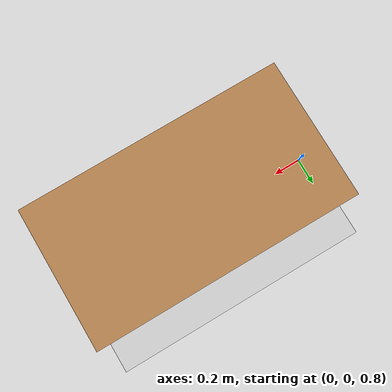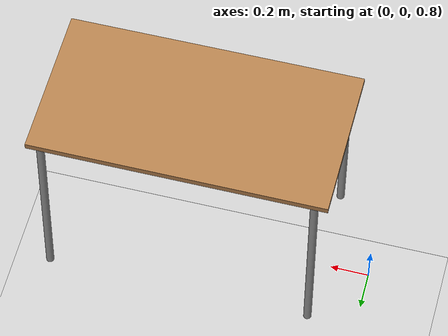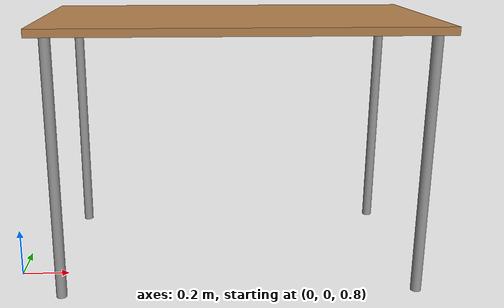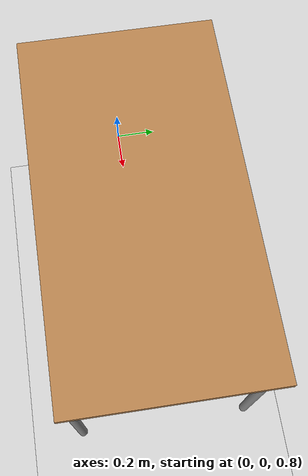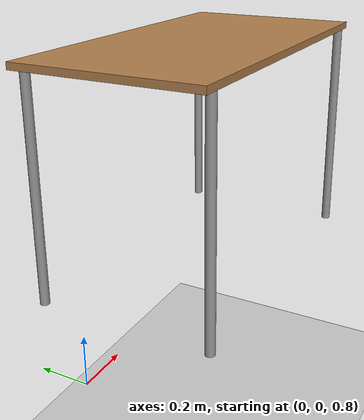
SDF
<?xml version="1.0" ?>
<sdf version="1.6">
  <world name="default">
    <include>
      <uri>model://sun</uri>
    </include>

    <include>
      <uri>model://ground_plane</uri>
    </include>

    <physics name="ode" type="ode">
      <ode>
        <constraints>
          <contact_max_correcting_vel>0</contact_max_correcting_vel>
        </constraints>
      </ode>
      <max_step_size>0.001</max_step_size>
      <real_time_update_rate>1000</real_time_update_rate>
    </physics>

    <plugin name="stepping_plugin" filename="libstepping_plugin.so"/>

    <model name="moveit_plugin_model">
      <plugin name="gazebo_ros_moveit_planning_scene" filename="libgazebo_ros_moveit_planning_scene.so">
        <robotName>victor</robotName>
        <!--  This must be the same as the root frame of the robot you're using -->
        <frameId>victor_root</frameId>
      </plugin>
    </model>

    <include>
      <name>table</name>
      <pose>0.92 0 0.90 0 0 0</pose>
      <uri>model://table</uri>
    </include>

  </world>
</sdf>

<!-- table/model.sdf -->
<sdf version="1.5">
  <model name="table">
    <static>true</static>
    <link name="link">
      <collision name="surface">
        <pose>0 0 1.0 0 0 0</pose>
        <geometry>
          <box>
            <size>1.5 0.8 0.03</size>
          </box>
        </geometry>
        <surface>
          <friction>
            <ode>
              <mu>0.6</mu>
              <mu2>0.6</mu2>
            </ode>
          </friction>
        </surface>
      </collision>
      <visual name="visual1">
        <pose>0 0 1.0 0 0 0</pose>
        <geometry>
          <box>
            <size>1.5 0.8 0.03</size>
          </box>
        </geometry>
        <material>
          <script>
            <uri>model://media/materials/scripts/gazebo.material</uri>
            <name>Gazebo/Wood</name>
          </script>
        </material>
      </visual>
      <collision name="front_left_leg">
        <pose>0.68 0.38 0.5 0 0 0</pose>
        <geometry>
          <cylinder>
            <radius>0.02</radius>
            <length>1.0</length>
          </cylinder>
        </geometry>
      </collision>
      <visual name="front_left_leg">
        <pose>0.68 0.38 0.5 0 0 0</pose>
        <geometry>
          <cylinder>
            <radius>0.02</radius>
            <length>1.0</length>
          </cylinder>
        </geometry>
        <material>
          <script>
            <uri>model://media/materials/scripts/gazebo.material</uri>
            <name>Gazebo/Grey</name>
          </script>
        </material>
      </visual>
      <collision name="front_right_leg">
        <pose>0.68 -0.38 0.5 0 0 0</pose>
        <geometry>
          <cylinder>
            <radius>0.02</radius>
            <length>1.0</length>
          </cylinder>
        </geometry>
      </collision>
      <visual name="front_right_leg">
        <pose>0.68 -0.38 0.5 0 0 0</pose>
        <geometry>
          <cylinder>
            <radius>0.02</radius>
            <length>1.0</length>
          </cylinder>
        </geometry>
        <material>
          <script>
            <uri>model://media/materials/scripts/gazebo.material</uri>
            <name>Gazebo/Grey</name>
          </script>
        </material>
      </visual>
      <collision name="back_right_leg">
        <pose>-0.68 -0.38 0.5 0 0 0</pose>
        <geometry>
          <cylinder>
            <radius>0.02</radius>
            <length>1.0</length>
          </cylinder>
        </geometry>
      </collision>
      <visual name="back_right_leg">
        <pose>-0.68 -0.38 0.5 0 0 0</pose>
        <geometry>
          <cylinder>
            <radius>0.02</radius>
            <length>1.0</length>
          </cylinder>
        </geometry>
        <material>
          <script>
            <uri>model://media/materials/scripts/gazebo.material</uri>
            <name>Gazebo/Grey</name>
          </script>
        </material>
      </visual>
      <collision name="back_left_leg">
        <pose>-0.68 0.38 0.5 0 0 0</pose>
        <geometry>
          <cylinder>
            <radius>0.02</radius>
            <length>1.0</length>
          </cylinder>
        </geometry>
      </collision>
      <visual name="back_left_leg">
        <pose>-0.68 0.38 0.5 0 0 0</pose>
        <geometry>
          <cylinder>
            <radius>0.02</radius>
            <length>1.0</length>
          </cylinder>
        </geometry>
        <material>
          <script>
            <uri>model://media/materials/scripts/gazebo.material</uri>
            <name>Gazebo/Grey</name>
          </script>
        </material>
      </visual>
    </link>
  </model>
</sdf>
